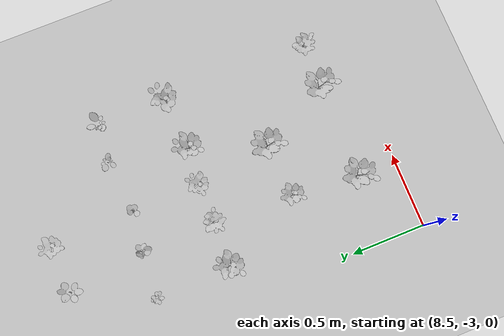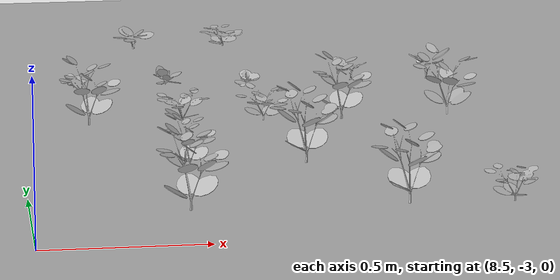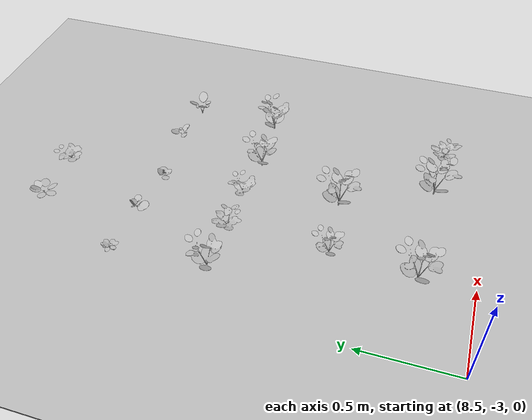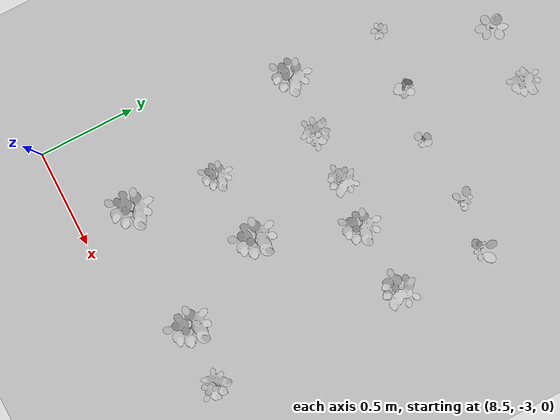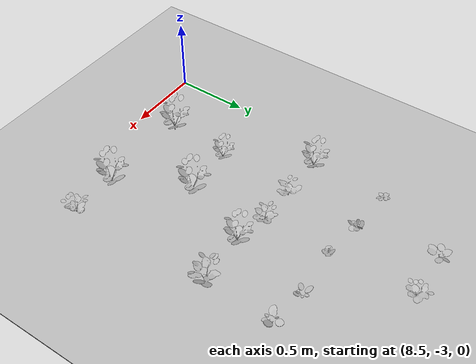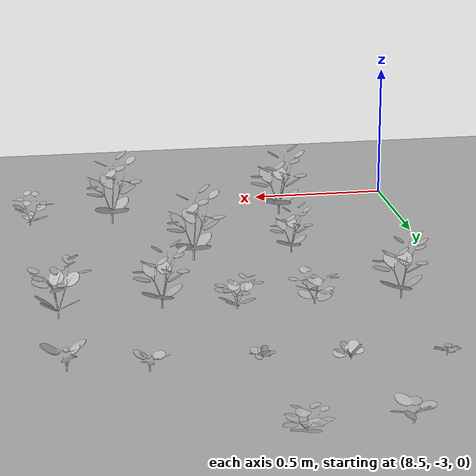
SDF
<sdf version="1.7">
 <world name="default">
  <model name="ground_plane">
   <static>1</static>
   <link name="link">
    <collision name="collision">
     <geometry><plane><normal>0 0 1</normal><size>100 100</size></plane></geometry>
     <surface>
      <contact><collide_bitmask>65535</collide_bitmask></contact>
      <friction><ode><mu>100</mu><mu2>50</mu2></ode></friction>
     </surface>
    </collision>
    <visual name="visual">
     <cast_shadows>0</cast_shadows>
     <geometry><plane><normal>0 0 1</normal><size>100 100</size></plane></geometry>
     <material>
      <ambient>0.2 0.2 0.2 1.0</ambient>
      <diffuse>0.2 0.2 0.2 1.0</diffuse>
      <specular>0.2 0.2 0.2 1.0</specular>
      <emissive>0.2 0.2 0.2 1.0</emissive>
     </material>
    </visual>
   </link>
  </model>
  <model name="ground">
   <pose>5 -0.5 0.01  3.141592654 0 0</pose>
   <static>true</static>
   <link name="body">
    <visual name="visual">
     <cast_shadows>0</cast_shadows>
     <geometry>
      <mesh><uri>file:///home/ifcosta/catkin_ws/src/cnn_line/worlds/models/ground.obj</uri></mesh>
     </geometry>
    </visual>
   </link>
  </model>
  <model name="plt_29">
   <pose>8.71 -1.23 0.011 0.0 0.0 -1.06</pose>
   <static>true</static>
   <link name="body">
    <visual name="visual">
     <geometry>
      <mesh><uri>file:///home/ifcosta/catkin_ws/src/cnn_line/worlds/models/plant4.obj</uri></mesh>
     </geometry>
    </visual>
   </link>
  </model>
  <model name="plt_30">
   <pose>9.02 -1.24 0.0133 0.0 0.0 0.33058</pose>
   <static>true</static>
   <link name="body">
    <visual name="visual">
     <geometry>
      <mesh><uri>file:///home/ifcosta/catkin_ws/src/cnn_line/worlds/models/plant7.obj</uri></mesh>
     </geometry>
    </visual>
   </link>
  </model>
  <model name="plt_31">
   <pose>9.29 -1.28 0.0153 0.0 0.0 0.036016</pose>
   <static>true</static>
   <link name="body">
    <visual name="visual">
     <geometry>
      <mesh><uri>file:///home/ifcosta/catkin_ws/src/cnn_line/worlds/models/plant6.obj</uri></mesh>
     </geometry>
    </visual>
   </link>
  </model>
  <model name="plt_32">
   <pose>9.65 -1.24 0.0117 0.0 0.0 -1.0478</pose>
   <static>true</static>
   <link name="body">
    <visual name="visual">
     <geometry>
      <mesh><uri>file:///home/ifcosta/catkin_ws/src/cnn_line/worlds/models/plant1.obj</uri></mesh>
     </geometry>
    </visual>
   </link>
  </model>
  <model name="plt_33">
   <pose>9.9 -1.25 0.0164 0.0 0.0 -0.065231</pose>
   <static>true</static>
   <link name="body">
    <visual name="visual">
     <geometry>
      <mesh><uri>file:///home/ifcosta/catkin_ws/src/cnn_line/worlds/models/plant3.obj</uri></mesh>
     </geometry>
    </visual>
   </link>
  </model>
  <model name="plt_64">
   <pose>8.95 -0.718 0.016 0.0 0.0 1.7275</pose>
   <static>true</static>
   <link name="body">
    <visual name="visual">
     <geometry>
      <mesh><uri>file:///home/ifcosta/catkin_ws/src/cnn_line/worlds/models/plant2.obj</uri></mesh>
     </geometry>
    </visual>
   </link>
  </model>
  <model name="plt_65">
   <pose>9.27 -0.715 0.0154 0.0 0.0 0.08343</pose>
   <static>true</static>
   <link name="body">
    <visual name="visual">
     <geometry>
      <mesh><uri>file:///home/ifcosta/catkin_ws/src/cnn_line/worlds/models/plant0.obj</uri></mesh>
     </geometry>
    </visual>
   </link>
  </model>
  <model name="plt_10132">
   <pose>8.96 -2.72 0.0173 0.0 0.0 -0.19724</pose>
   <static>true</static>
   <link name="body">
    <visual name="visual">
     <geometry>
      <mesh><uri>file:///home/ifcosta/catkin_ws/src/cnn_line/worlds/models/plant13.obj</uri></mesh>
     </geometry>
    </visual>
   </link>
  </model>
  <model name="plt_10134">
   <pose>9.6 -2.72 0.0144 0.0 0.0 0.18323</pose>
   <static>true</static>
   <link name="body">
    <visual name="visual">
     <geometry>
      <mesh><uri>file:///home/ifcosta/catkin_ws/src/cnn_line/worlds/models/plant13.obj</uri></mesh>
     </geometry>
    </visual>
   </link>
  </model>
  <model name="plt_10135">
   <pose>9.91 -2.74 0.0159 0.0 0.0 1.0654</pose>
   <static>true</static>
   <link name="body">
    <visual name="visual">
     <geometry>
      <mesh><uri>file:///home/ifcosta/catkin_ws/src/cnn_line/worlds/models/plant10.obj</uri></mesh>
     </geometry>
    </visual>
   </link>
  </model>
  <model name="plt_10166">
   <pose>9.0 -2.28 0.0137 0.0 0.0 -0.17325</pose>
   <static>true</static>
   <link name="body">
    <visual name="visual">
     <geometry>
      <mesh><uri>file:///home/ifcosta/catkin_ws/src/cnn_line/worlds/models/plant11.obj</uri></mesh>
     </geometry>
    </visual>
   </link>
  </model>
  <model name="plt_10167">
   <pose>9.36 -2.25 0.0137 0.0 0.0 0.11171</pose>
   <static>true</static>
   <link name="body">
    <visual name="visual">
     <geometry>
      <mesh><uri>file:///home/ifcosta/catkin_ws/src/cnn_line/worlds/models/plant13.obj</uri></mesh>
     </geometry>
    </visual>
   </link>
  </model>
  <model name="plt_10199">
   <pose>8.73 -1.74 0.0171 0.0 0.0 -0.39793</pose>
   <static>true</static>
   <link name="body">
    <visual name="visual">
     <geometry>
      <mesh><uri>file:///home/ifcosta/catkin_ws/src/cnn_line/worlds/models/plant12.obj</uri></mesh>
     </geometry>
    </visual>
   </link>
  </model>
  <model name="plt_10200">
   <pose>9.03 -1.74 0.0139 0.0 0.0 1.8268</pose>
   <static>true</static>
   <link name="body">
    <visual name="visual">
     <geometry>
      <mesh><uri>file:///home/ifcosta/catkin_ws/src/cnn_line/worlds/models/plant10.obj</uri></mesh>
     </geometry>
    </visual>
   </link>
  </model>
  <model name="plt_10201">
   <pose>9.29 -1.74 0.0139 0.0 0.0 -0.86868</pose>
   <static>true</static>
   <link name="body">
    <visual name="visual">
     <geometry>
      <mesh><uri>file:///home/ifcosta/catkin_ws/src/cnn_line/worlds/models/plant10.obj</uri></mesh>
     </geometry>
    </visual>
   </link>
  </model>
  <model name="plt_10202">
   <pose>9.54 -1.77 0.0184 0.0 0.0 -0.19429</pose>
   <static>true</static>
   <link name="body">
    <visual name="visual">
     <geometry>
      <mesh><uri>file:///home/ifcosta/catkin_ws/src/cnn_line/worlds/models/plant12.obj</uri></mesh>
     </geometry>
    </visual>
   </link>
  </model>
  <model name="plt_10203">
   <pose>9.89 -1.74 0.014 0.0 0.0 -1.0191</pose>
   <static>true</static>
   <link name="body">
    <visual name="visual">
     <geometry>
      <mesh><uri>file:///home/ifcosta/catkin_ws/src/cnn_line/worlds/models/plant12.obj</uri></mesh>
     </geometry>
    </visual>
   </link>
  </model>
 </world>
</sdf>
